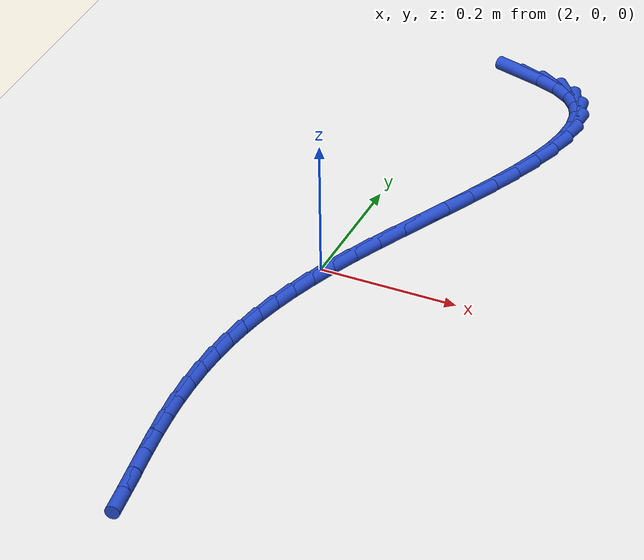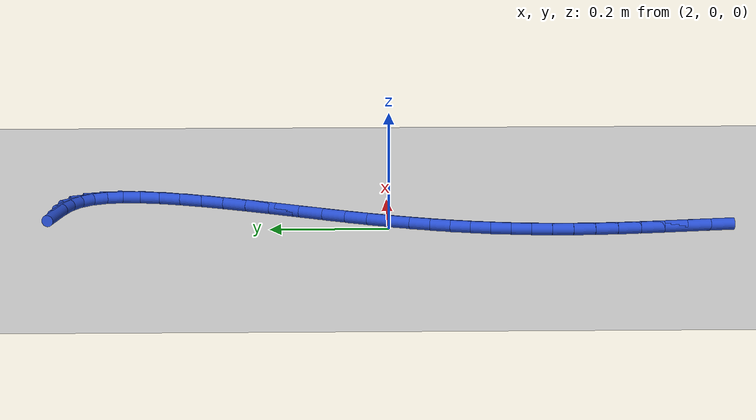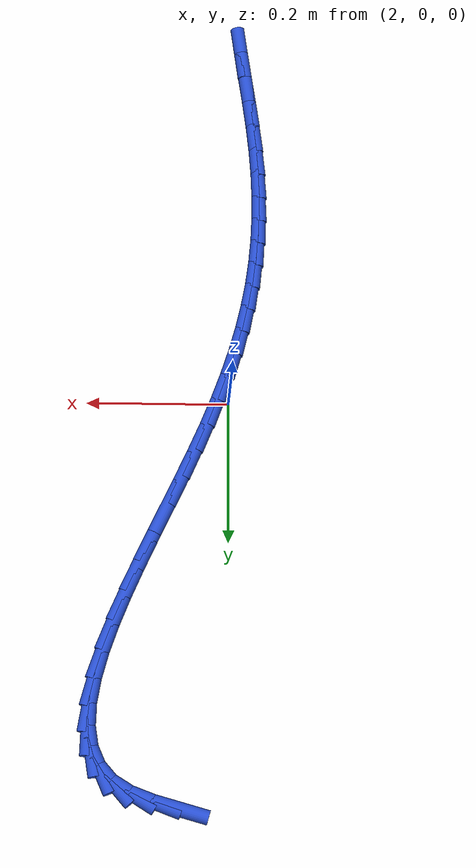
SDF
<sdf version="1.6">
 <world name="default">
  <model name="ground_plane">
   <static>1</static>
   <link name="link">
    <collision name="collision">
     <geometry><plane><normal>0 0 1</normal><size>100 100</size></plane></geometry>
     <surface><friction><ode><mu>100</mu><mu2>50</mu2></ode></friction></surface>
    </collision>
    <visual name="visual">
     <cast_shadows>0</cast_shadows>
     <geometry><plane><normal>0 0 1</normal><size>100 100</size></plane></geometry>
     <material>
      <script><uri>file://media/materials/scripts/gazebo.material</uri><name>Gazebo/WhiteGlow</name></script>
     </material>
    </visual>
   </link>
  </model>
  <model name="line">
   <link name="link_82">
    <pose>2.0649354042604786 0.5649723822853556 0.01 0 1.57 -0.27243142143799076</pose>
    <collision name="collision">
     <geometry><cylinder><radius>0.01</radius><length>0.08</length></cylinder></geometry>
    </collision>
    <visual name="visual">
     <material>
      <script><name>Gazebo/Blue</name><uri>file://media/materials/scripts/gazebo.material</uri></script>
     </material>
     <geometry><cylinder><radius>0.01</radius><length>0.08</length></cylinder></geometry>
    </visual>
   </link>
   <link name="link_83">
    <pose>2.1000966396446867 0.5551491221367302 0.01 0 1.57 -0.35914522945712607</pose>
    <collision name="collision">
     <geometry><cylinder><radius>0.01</radius><length>0.08</length></cylinder></geometry>
    </collision>
    <visual name="visual">
     <material>
      <script><name>Gazebo/Blue</name><uri>file://media/materials/scripts/gazebo.material</uri></script>
     </material>
     <geometry><cylinder><radius>0.01</radius><length>0.08</length></cylinder></geometry>
    </visual>
   </link>
   <link name="link_84">
    <pose>2.1312521065724837 0.5434525095692013 0.01 0 1.57 -0.552932372046096</pose>
    <collision name="collision">
     <geometry><cylinder><radius>0.01</radius><length>0.08</length></cylinder></geometry>
    </collision>
    <visual name="visual">
     <material>
      <script><name>Gazebo/Blue</name><uri>file://media/materials/scripts/gazebo.material</uri></script>
     </material>
     <geometry><cylinder><radius>0.01</radius><length>0.08</length></cylinder></geometry>
    </visual>
   </link>
   <link name="link_85">
    <pose>2.1561137839873026 0.5281091965441468 0.01 0 1.57 -0.8521561008256464</pose>
    <collision name="collision">
     <geometry><cylinder><radius>0.01</radius><length>0.08</length></cylinder></geometry>
    </collision>
    <visual name="visual">
     <material>
      <script><name>Gazebo/Blue</name><uri>file://media/materials/scripts/gazebo.material</uri></script>
     </material>
     <geometry><cylinder><radius>0.01</radius><length>0.08</length></cylinder></geometry>
    </visual>
   </link>
   <link name="link_86">
    <pose>2.1735316365237702 0.5081954549346254 0.01 0 1.57 -1.1590251264239122</pose>
    <collision name="collision">
     <geometry><cylinder><radius>0.01</radius><length>0.08</length></cylinder></geometry>
    </collision>
    <visual name="visual">
     <material>
      <script><name>Gazebo/Blue</name><uri>file://media/materials/scripts/gazebo.material</uri></script>
     </material>
     <geometry><cylinder><radius>0.01</radius><length>0.08</length></cylinder></geometry>
    </visual>
   </link>
   <link name="link_87">
    <pose>2.184069429624626 0.4840670799877535 0.01 0 1.57 -1.4155631898660015</pose>
    <collision name="collision">
     <geometry><cylinder><radius>0.01</radius><length>0.08</length></cylinder></geometry>
    </collision>
    <visual name="visual">
     <material>
      <script><name>Gazebo/Blue</name><uri>file://media/materials/scripts/gazebo.material</uri></script>
     </material>
     <geometry><cylinder><radius>0.01</radius><length>0.08</length></cylinder></geometry>
    </visual>
   </link>
   <link name="link_88">
    <pose>2.188432651058271 0.4561856768134095 0.01 0 1.57 1.535335990312804</pose>
    <collision name="collision">
     <geometry><cylinder><radius>0.01</radius><length>0.08</length></cylinder></geometry>
    </collision>
    <visual name="visual">
     <material>
      <script><name>Gazebo/Blue</name><uri>file://media/materials/scripts/gazebo.material</uri></script>
     </material>
     <geometry><cylinder><radius>0.01</radius><length>0.08</length></cylinder></geometry>
    </visual>
   </link>
   <link name="link_89">
    <pose>2.1873267885931065 0.4250128505214723 0.01 0 1.57 1.3998630918582862</pose>
    <collision name="collision">
     <geometry><cylinder><radius>0.01</radius><length>0.08</length></cylinder></geometry>
    </collision>
    <visual name="visual">
     <material>
      <script><name>Gazebo/Blue</name><uri>file://media/materials/scripts/gazebo.material</uri></script>
     </material>
     <geometry><cylinder><radius>0.01</radius><length>0.08</length></cylinder></geometry>
    </visual>
   </link>
   <link name="link_90">
    <pose>2.181457329997532 0.39101020622182026 0.01 0 1.57 1.3043333613215724</pose>
    <collision name="collision">
     <geometry><cylinder><radius>0.01</radius><length>0.08</length></cylinder></geometry>
    </collision>
    <visual name="visual">
     <material>
      <script><name>Gazebo/Blue</name><uri>file://media/materials/scripts/gazebo.material</uri></script>
     </material>
     <geometry><cylinder><radius>0.01</radius><length>0.08</length></cylinder></geometry>
    </visual>
   </link>
   <link name="link_91">
    <pose>2.1715297630399486 0.35463934902433203 0.01 0 1.57 1.236845408611522</pose>
    <collision name="collision">
     <geometry><cylinder><radius>0.01</radius><length>0.08</length></cylinder></geometry>
    </collision>
    <visual name="visual">
     <material>
      <script><name>Gazebo/Blue</name><uri>file://media/materials/scripts/gazebo.material</uri></script>
     </material>
     <geometry><cylinder><radius>0.01</radius><length>0.08</length></cylinder></geometry>
    </visual>
   </link>
   <link name="link_92">
    <pose>2.1582495754887567 0.31636188403888627 0.01 0 1.57 1.1894583055505605</pose>
    <collision name="collision">
     <geometry><cylinder><radius>0.01</radius><length>0.08</length></cylinder></geometry>
    </collision>
    <visual name="visual">
     <material>
      <script><name>Gazebo/Blue</name><uri>file://media/materials/scripts/gazebo.material</uri></script>
     </material>
     <geometry><cylinder><radius>0.01</radius><length>0.08</length></cylinder></geometry>
    </visual>
   </link>
   <link name="link_93">
    <pose>2.142322255112358 0.27663941637536166 0.01 0 1.57 1.1571462937232906</pose>
    <collision name="collision">
     <geometry><cylinder><radius>0.01</radius><length>0.08</length></cylinder></geometry>
    </collision>
    <visual name="visual">
     <material>
      <script><name>Gazebo/Blue</name><uri>file://media/materials/scripts/gazebo.material</uri></script>
     </material>
     <geometry><cylinder><radius>0.01</radius><length>0.08</length></cylinder></geometry>
    </visual>
   </link>
   <link name="link_94">
    <pose>2.1244532896791513 0.23593355114363662 0.01 0 1.57 1.1368504888328792</pose>
    <collision name="collision">
     <geometry><cylinder><radius>0.01</radius><length>0.08</length></cylinder></geometry>
    </collision>
    <visual name="visual">
     <material>
      <script><name>Gazebo/Blue</name><uri>file://media/materials/scripts/gazebo.material</uri></script>
     </material>
     <geometry><cylinder><radius>0.01</radius><length>0.08</length></cylinder></geometry>
    </visual>
   </link>
   <link name="link_95">
    <pose>2.105348166957539 0.19470589345358996 0.01 0 1.57 1.1268725202659604</pose>
    <collision name="collision">
     <geometry><cylinder><radius>0.01</radius><length>0.08</length></cylinder></geometry>
    </collision>
    <visual name="visual">
     <material>
      <script><name>Gazebo/Blue</name><uri>file://media/materials/scripts/gazebo.material</uri></script>
     </material>
     <geometry><cylinder><radius>0.01</radius><length>0.08</length></cylinder></geometry>
    </visual>
   </link>
   <link name="link_96">
    <pose>2.0857123747159205 0.15341804841510062 0.01 0 1.57 1.1265516465157683</pose>
    <collision name="collision">
     <geometry><cylinder><radius>0.01</radius><length>0.08</length></cylinder></geometry>
    </collision>
    <visual name="visual">
     <material>
      <script><name>Gazebo/Blue</name><uri>file://media/materials/scripts/gazebo.material</uri></script>
     </material>
     <geometry><cylinder><radius>0.01</radius><length>0.08</length></cylinder></geometry>
    </visual>
   </link>
   <link name="link_97">
    <pose>2.066251400722696 0.11253162113804625 0.01 0 1.57 1.1361595529909823</pose>
    <collision name="collision">
     <geometry><cylinder><radius>0.01</radius><length>0.08</length></cylinder></geometry>
    </collision>
    <visual name="visual">
     <material>
      <script><name>Gazebo/Blue</name><uri>file://media/materials/scripts/gazebo.material</uri></script>
     </material>
     <geometry><cylinder><radius>0.01</radius><length>0.08</length></cylinder></geometry>
    </visual>
   </link>
   <link name="link_98">
    <pose>2.0476707327462678 0.072508216732306 0.01 0 1.57 1.1567267558866396</pose>
    <collision name="collision">
     <geometry><cylinder><radius>0.01</radius><length>0.08</length></cylinder></geometry>
    </collision>
    <visual name="visual">
     <material>
      <script><name>Gazebo/Blue</name><uri>file://media/materials/scripts/gazebo.material</uri></script>
     </material>
     <geometry><cylinder><radius>0.01</radius><length>0.08</length></cylinder></geometry>
    </visual>
   </link>
   <link name="link_99">
    <pose>2.0306551559050576 0.03379052978220394 0.01 0 1.57 1.185218741612478</pose>
    <collision name="collision">
     <geometry><cylinder><radius>0.01</radius><length>0.08</length></cylinder></geometry>
    </collision>
    <visual name="visual">
     <material>
      <script><name>Gazebo/Blue</name><uri>file://media/materials/scripts/gazebo.material</uri></script>
     </material>
     <geometry><cylinder><radius>0.01</radius><length>0.08</length></cylinder></geometry>
    </visual>
   </link>
   <link name="link_100">
    <pose>2.0155081569753874 -0.003527036387743816 0.01 0 1.57 1.2178240744896185</pose>
    <collision name="collision">
     <geometry><cylinder><radius>0.01</radius><length>0.08</length></cylinder></geometry>
    </collision>
    <visual name="visual">
     <material>
      <script><name>Gazebo/Blue</name><uri>file://media/materials/scripts/gazebo.material</uri></script>
     </material>
     <geometry><cylinder><radius>0.01</radius><length>0.08</length></cylinder></geometry>
    </visual>
   </link>
   <link name="link_101">
    <pose>2.0021981901984196 -0.03965610890441104 0.01 0 1.57 1.254301761639082</pose>
    <collision name="collision">
     <geometry><cylinder><radius>0.01</radius><length>0.08</length></cylinder></geometry>
    </collision>
    <visual name="visual">
     <material>
      <script><name>Gazebo/Blue</name><uri>file://media/materials/scripts/gazebo.material</uri></script>
     </material>
     <geometry><cylinder><radius>0.01</radius><length>0.08</length></cylinder></geometry>
    </visual>
   </link>
   <link name="link_102">
    <pose>1.9906823088894743 -0.07481872889962975 0.01 0 1.57 1.2943519417084903</pose>
    <collision name="collision">
     <geometry><cylinder><radius>0.01</radius><length>0.08</length></cylinder></geometry>
    </collision>
    <visual name="visual">
     <material>
      <script><name>Gazebo/Blue</name><uri>file://media/materials/scripts/gazebo.material</uri></script>
     </material>
     <geometry><cylinder><radius>0.01</radius><length>0.08</length></cylinder></geometry>
    </visual>
   </link>
   <link name="link_103">
    <pose>1.9809175663638685 -0.10923693750523174 0.01 0 1.57 1.3374409062754202</pose>
    <collision name="collision">
     <geometry><cylinder><radius>0.01</radius><length>0.08</length></cylinder></geometry>
    </collision>
    <visual name="visual">
     <material>
      <script><name>Gazebo/Blue</name><uri>file://media/materials/scripts/gazebo.material</uri></script>
     </material>
     <geometry><cylinder><radius>0.01</radius><length>0.08</length></cylinder></geometry>
    </visual>
   </link>
   <link name="link_104">
    <pose>1.9728610159369224 -0.14313277585304887 0.01 0 1.57 1.38280001388837</pose>
    <collision name="collision">
     <geometry><cylinder><radius>0.01</radius><length>0.08</length></cylinder></geometry>
    </collision>
    <visual name="visual">
     <material>
      <script><name>Gazebo/Blue</name><uri>file://media/materials/scripts/gazebo.material</uri></script>
     </material>
     <geometry><cylinder><radius>0.01</radius><length>0.08</length></cylinder></geometry>
    </visual>
   </link>
   <link name="link_105">
    <pose>1.9664697109239544 -0.17672828507491306 0.01 0 1.57 1.429459769611212</pose>
    <collision name="collision">
     <geometry><cylinder><radius>0.01</radius><length>0.08</length></cylinder></geometry>
    </collision>
    <visual name="visual">
     <material>
      <script><name>Gazebo/Blue</name><uri>file://media/materials/scripts/gazebo.material</uri></script>
     </material>
     <geometry><cylinder><radius>0.01</radius><length>0.08</length></cylinder></geometry>
    </visual>
   </link>
   <link name="link_106">
    <pose>1.961700704640284 -0.21024550630265615 0.01 0 1.57 1.4763201970924797</pose>
    <collision name="collision">
     <geometry><cylinder><radius>0.01</radius><length>0.08</length></cylinder></geometry>
    </collision>
    <visual name="visual">
     <material>
      <script><name>Gazebo/Blue</name><uri>file://media/materials/scripts/gazebo.material</uri></script>
     </material>
     <geometry><cylinder><radius>0.01</radius><length>0.08</length></cylinder></geometry>
    </visual>
   </link>
   <link name="link_107">
    <pose>1.9585110504012289 -0.24390648066811 0.01 0 1.57 1.5222477910221277</pose>
    <collision name="collision">
     <geometry><cylinder><radius>0.01</radius><length>0.08</length></cylinder></geometry>
    </collision>
    <visual name="visual">
     <material>
      <script><name>Gazebo/Blue</name><uri>file://media/materials/scripts/gazebo.material</uri></script>
     </material>
     <geometry><cylinder><radius>0.01</radius><length>0.08</length></cylinder></geometry>
    </visual>
   </link>
   <link name="link_108">
    <pose>1.956857801522109 -0.2779332493031064 0.01 0 1.57 1.5661800940431065</pose>
    <collision name="collision">
     <geometry><cylinder><radius>0.01</radius><length>0.08</length></cylinder></geometry>
    </collision>
    <visual name="visual">
     <material>
      <script><name>Gazebo/Blue</name><uri>file://media/materials/scripts/gazebo.material</uri></script>
     </material>
     <geometry><cylinder><radius>0.01</radius><length>0.08</length></cylinder></geometry>
    </visual>
   </link>
   <link name="link_109">
    <pose>1.9566980113182424 -0.31254785333947727 0.01 0 1.57 -1.5343765672148983</pose>
    <collision name="collision">
     <geometry><cylinder><radius>0.01</radius><length>0.08</length></cylinder></geometry>
    </collision>
    <visual name="visual">
     <material>
      <script><name>Gazebo/Blue</name><uri>file://media/materials/scripts/gazebo.material</uri></script>
     </material>
     <geometry><cylinder><radius>0.01</radius><length>0.08</length></cylinder></geometry>
    </visual>
   </link>
   <link name="link_110">
    <pose>1.957988733104949 -0.3479723339090546 0.01 0 1.57 -1.4969169474334438</pose>
    <collision name="collision">
     <geometry><cylinder><radius>0.01</radius><length>0.08</length></cylinder></geometry>
    </collision>
    <visual name="visual">
     <material>
      <script><name>Gazebo/Blue</name><uri>file://media/materials/scripts/gazebo.material</uri></script>
     </material>
     <geometry><cylinder><radius>0.01</radius><length>0.08</length></cylinder></geometry>
    </visual>
   </link>
   <link name="link_111">
    <pose>1.9606870201975468 -0.3844287321436701 0.01 0 1.57 -1.4635279063949067</pose>
    <collision name="collision">
     <geometry><cylinder><radius>0.01</radius><length>0.08</length></cylinder></geometry>
    </collision>
    <visual name="visual">
     <material>
      <script><name>Gazebo/Blue</name><uri>file://media/materials/scripts/gazebo.material</uri></script>
     </material>
     <geometry><cylinder><radius>0.01</radius><length>0.08</length></cylinder></geometry>
    </visual>
   </link>
   <link name="link_112">
    <pose>1.9647473848289025 -0.42213581414572915 0.01 0 1.57 -1.4380393048789493</pose>
    <collision name="collision">
     <geometry><cylinder><radius>0.01</radius><length>0.08</length></cylinder></geometry>
    </collision>
    <visual name="visual">
     <material>
      <script><name>Gazebo/Blue</name><uri>file://media/materials/scripts/gazebo.material</uri></script>
     </material>
     <geometry><cylinder><radius>0.01</radius><length>0.08</length></cylinder></geometry>
    </visual>
   </link>
   <link name="link_113">
    <pose>1.9699489248802668 -0.46108626631571464 0.01 0 1.57 -1.4252694687430192</pose>
    <collision name="collision">
     <geometry><cylinder><radius>0.01</radius><length>0.08</length></cylinder></geometry>
    </collision>
    <visual name="visual">
     <material>
      <script><name>Gazebo/Blue</name><uri>file://media/materials/scripts/gazebo.material</uri></script>
     </material>
     <geometry><cylinder><radius>0.01</radius><length>0.08</length></cylinder></geometry>
    </visual>
   </link>
   <link name="link_114">
    <pose>1.9757847584476693 -0.500904195037691 0.01 0 1.57 -1.4244428388406611</pose>
    <collision name="collision">
     <geometry><cylinder><radius>0.01</radius><length>0.08</length></cylinder></geometry>
    </collision>
    <visual name="visual">
     <material>
      <script><name>Gazebo/Blue</name><uri>file://media/materials/scripts/gazebo.material</uri></script>
     </material>
     <geometry><cylinder><radius>0.01</radius><length>0.08</length></cylinder></geometry>
    </visual>
   </link>
   <link name="link_115">
    <pose>1.981721679691905 -0.5411797795547767 0.01 0 1.57 -1.43511876255204</pose>
    <collision name="collision">
     <geometry><cylinder><radius>0.01</radius><length>0.08</length></cylinder></geometry>
    </collision>
    <visual name="visual">
     <material>
      <script><name>Gazebo/Blue</name><uri>file://media/materials/scripts/gazebo.material</uri></script>
     </material>
     <geometry><cylinder><radius>0.01</radius><length>0.08</length></cylinder></geometry>
    </visual>
   </link>
  </model>
 </world>
</sdf>
